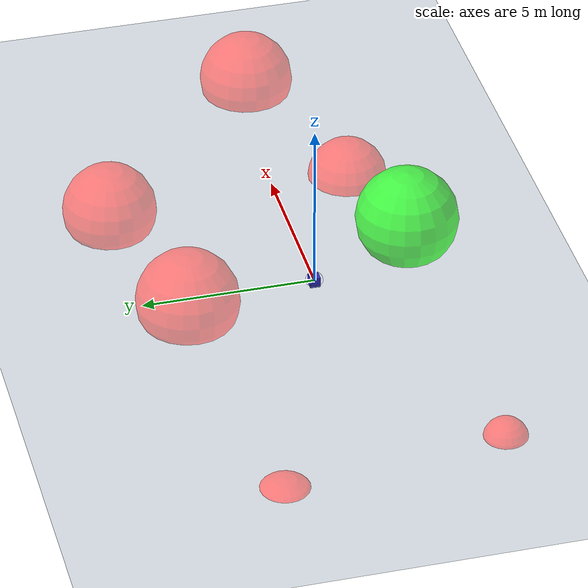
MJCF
<?xml version='1.0' encoding='utf-8'?>
<mujoco model="astrobee">
    <compiler angle="radian" coordinate="local" />
    <option timestep="0.01" gravity="0 0 0" />

    <asset>
        <texture type="skybox" builtin="gradient" rgb1="0.6 0.8 1.0" rgb2="0.2 0.4 0.6" width="512" height="512" />
        <texture name="grid" type="2d" builtin="checker" rgb1=".4 .5 .6" rgb2=".5 .6 .7" width="512" height="512" mark="edge" markrgb=".8 .8 .8" />
        <material name="grid" texture="grid" texrepeat="1 1" texuniform="true" reflectance="0.4" />
    </asset>

    <default>
        <joint damping="0.1" />
    </default>

    <worldbody>
        <geom name="floor" pos="0 0 0" size="20 20 0.001" type="plane" material="grid" conaffinity="0" contype="0" />

        <light name="spotlight" pos="0 0 10" dir="0 0 -1" cutoff="60" diffuse=".8 .8 .8" specular=".3 .3 .3" />
        <light name="side1" pos="10 0 5" dir="-1 0 -0.3" cutoff="60" diffuse=".5 .5 .5" specular=".2 .2 .2" />
        <light name="side2" pos="-10 0 5" dir="1 0 -0.3" cutoff="60" diffuse=".5 .5 .5" specular=".2 .2 .2" />

        <body name="astrobee" pos="0 0 0">
            <joint name="x_joint" type="slide" axis="1 0 0" range="-100 100" />
            <joint name="y_joint" type="slide" axis="0 1 0" range="-100 100" />
            <joint name="z_joint" type="slide" axis="0 0 1" range="-100 100" />

            <joint name="roll_joint" type="hinge" axis="1 0 0" range="-3.14159 3.14159" />
            <joint name="pitch_joint" type="hinge" axis="0 1 0" range="-3.14159 3.14159" />
            <joint name="yaw_joint" type="hinge" axis="0 0 1" range="-3.14159 3.14159" />

            <geom type="box" size="0.15 0.15 0.15" rgba="0.2 0.2 0.8 1" />

            <geom type="sphere" size="0.26" rgba="0.2 0.2 0.8 0.2" />
        </body>

    <body name="obstacle1" pos="10.226759910583496 -0.5244704484939575 0.38748037815093994"><geom name="obstacle1" type="sphere" size="1.3988245725631714" rgba="1 0 0 0.5" /></body><body name="obstacle2" pos="-8.884520530700684 3.11629056930542 -0.7946888208389282"><geom name="obstacle2" type="sphere" size="1.0473180413246155" rgba="1 0 0 0.5" /></body><body name="obstacle3" pos="-8.195037841796875 -3.209819793701172 -0.13880956172943115"><geom name="obstacle3" type="sphere" size="0.6390843391418457" rgba="1 0 0 0.5" /></body><body name="obstacle4" pos="4.97833251953125 -2.304154634475708 -0.07048380374908447"><geom name="obstacle4" type="sphere" size="1.173067033290863" rgba="1 0 0 0.5" /></body><body name="obstacle5" pos="4.104848861694336 5.039748191833496 0.5798871517181396"><geom name="obstacle5" type="sphere" size="1.3709404468536377" rgba="1 0 0 0.5" /></body><body name="obstacle6" pos="-0.8059835433959961 3.8711798191070557 0.5856525897979736"><geom name="obstacle6" type="sphere" size="1.4848071932792664" rgba="1 0 0 0.5" /></body><site name="goal" pos="1.0 -3.0 1.0" size="1.5" type="sphere" rgba="0 1 0 0.7" /></worldbody>

    <actuator>
        <motor joint="x_joint" name="translate_x" gear="0.849" ctrlrange="-1 1" />
        <motor joint="y_joint" name="translate_y" gear="0.849" ctrlrange="-1 1" />
        <motor joint="z_joint" name="translate_z" gear="0.849" ctrlrange="-1 1" />

        <motor joint="roll_joint" name="rotate_roll" gear="0.1" ctrlrange="-1 1" />
        <motor joint="pitch_joint" name="rotate_pitch" gear="0.1" ctrlrange="-1 1" />
        <motor joint="yaw_joint" name="rotate_yaw" gear="0.1" ctrlrange="-1 1" />
    </actuator>
</mujoco>
